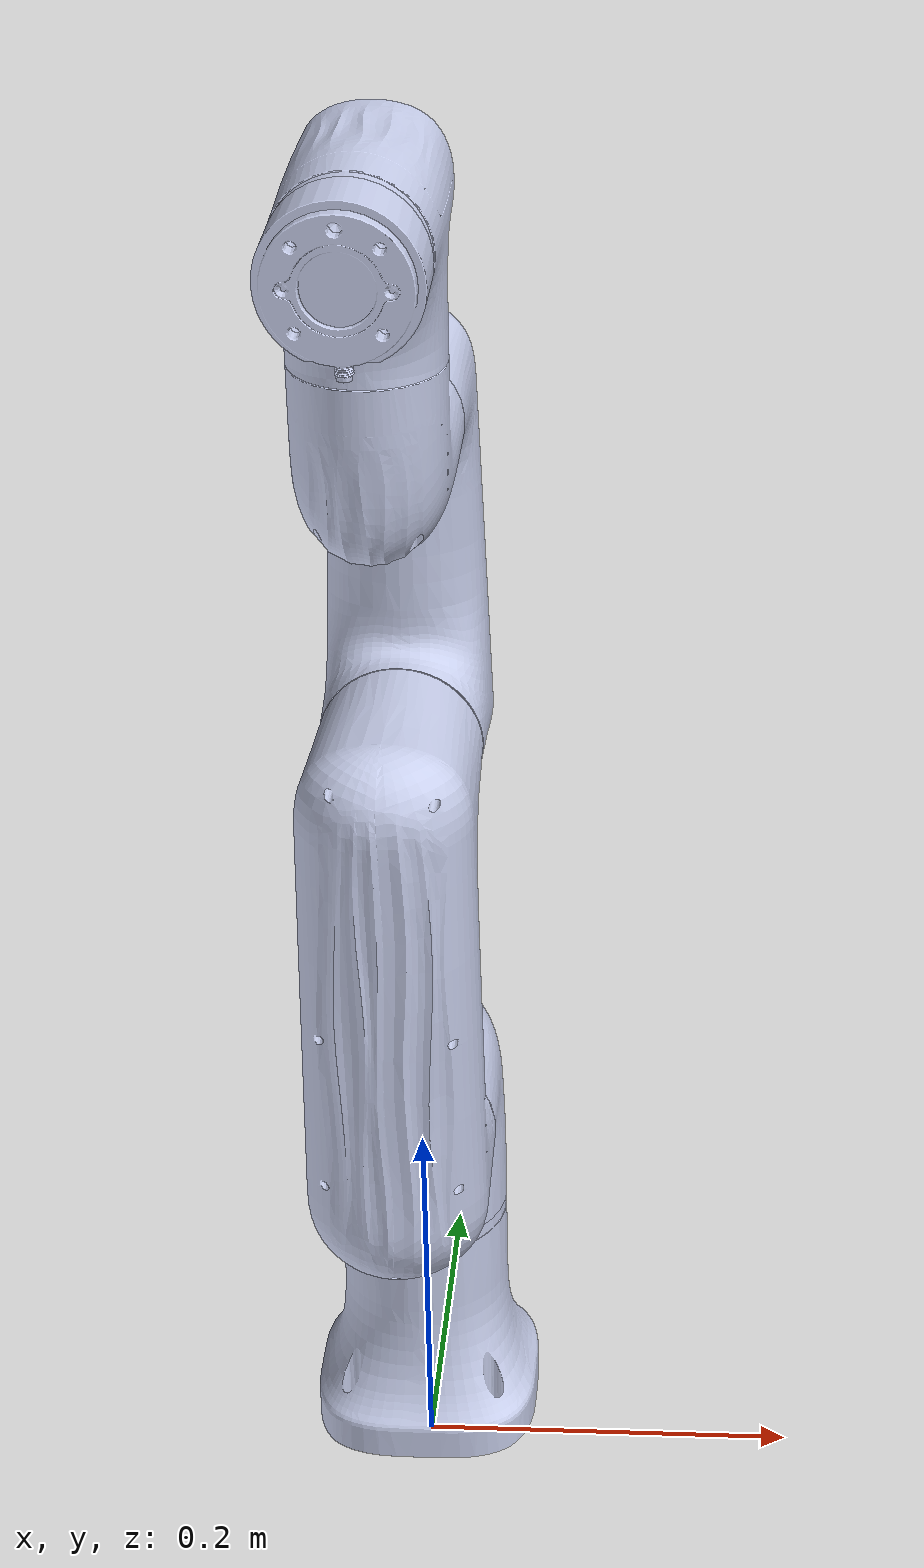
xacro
<?xml version="1.0"?>
<robot name="nova2s_robot" xmlns:xacro="http://ros.org/wiki/xacro">
  <link name="dummy_link" />
  <link
    name="base_link">
    <inertial>
      <origin
        xyz="1.0209E-06 0.00010913 0.063235"
        rpy="0 0 0" />
      <mass
        value="0.91548" />
      <inertia
        ixx="0.0018379"
        ixy="-7.0677E-07"
        ixz="1.1593E-07"
        iyy="0.0018392"
        iyz="-6.2348E-06"
        izz="0.0012494" />
    </inertial>
    <visual>
      <origin
        xyz="0 0 0"
        rpy="0 0 0" />
      <geometry>
        <mesh
          filename="file://$(find cra_description)/meshes/nova2s/base_link.STL" />
      </geometry>
      <material
        name="">
        <color
          rgba="0.79216 0.81961 0.93333 50" />
      </material>
    </visual>
    <collision>
      <origin
        xyz="0 0 0"
        rpy="0 0 0" />
      <geometry>
        <mesh
          filename="file://$(find cra_description)/meshes/nova2s/base_link.STL" />
      </geometry>
    </collision>
  </link>
    <link  name="world"/>
  <joint name="world_joint" type="fixed">
    <origin xyz="0 0 0.03" rpy="0 0 0" />
    <parent link="world" />
    <child  link="dummy_link" />
  </joint>
  <joint name="dummy_joint" type="fixed">
      <parent link="dummy_link" />
      <child  link="base_link" />
    </joint>
  <link
    name="Link1">
    <inertial>
      <origin
        xyz="-4.0953E-06 -0.0141 -0.022584"
        rpy="0 0 0" />
      <mass
        value="0.99824" />
      <inertia
        ixx="0.0022249"
        ixy="-1.0241E-07"
        ixz="-6.2827E-08"
        iyy="0.0017619"
        iyz="-0.000332"
        izz="0.0014195" />
    </inertial>
    <visual>
      <origin
        xyz="0 0 0"
        rpy="0 0 0" />
      <geometry>
        <mesh
          filename="file://$(find cra_description)/meshes/nova2s/Link1.STL" />
      </geometry>
      <material
        name="">
        <color
          rgba="0.79216 0.81961 0.93333 50" />
      </material>
    </visual>
    <collision>
      <origin
        xyz="0 0 0"
        rpy="0 0 0" />
      <geometry>
        <mesh
          filename="file://$(find cra_description)/meshes/nova2s/Link1.STL" />
      </geometry>
    </collision>
  </link>
  <joint
    name="joint1"
    type="revolute">
    <origin
      xyz="0 0 0.2234"
      rpy="0 0 0" />
    <parent
      link="base_link" />
    <child
      link="Link1" />
    <axis
      xyz="0 0 -1" />
    <limit
      lower="-6.283"
      upper="6.283"
      effort="0"
      velocity="0" />
  </joint>
  <link
    name="Link2">
    <inertial>
      <origin
        xyz="-0.11326 4.3343E-06 0.10595"
        rpy="0 0 0" />
      <mass
        value="1.7632" />
      <inertia
        ixx="0.002118"
        ixy="-1.1105E-09"
        ixz="0.001119"
        iyy="0.014156"
        iyz="2.2314E-07"
        izz="0.013753" />
    </inertial>
    <visual>
      <origin
        xyz="0 0 0"
        rpy="0 0 0" />
      <geometry>
        <mesh
          filename="file://$(find cra_description)/meshes/nova2s/Link2.STL" />
      </geometry>
      <material
        name="">
        <color
          rgba="0.79216 0.81961 0.93333 50" />
      </material>
    </visual>
    <collision>
      <origin
        xyz="0 0 0"
        rpy="0 0 0" />
      <geometry>
        <mesh
          filename="file://$(find cra_description)/meshes/nova2s/Link2.STL" />
      </geometry>
    </collision>
  </link>
  <joint
    name="joint2"
    type="revolute">
    <origin
      xyz="0 0 0"
      rpy="1.5708 1.5708 0" />
    <parent
      link="Link1" />
    <child
      link="Link2" />
    <axis
      xyz="0 0 -1" />
    <limit
      lower="-2.618"
      upper="2.618"
      effort="0"
      velocity="0" />
  </joint>
  <link
    name="Link3">
    <inertial>
      <origin
        xyz="-0.081962 -5.0488E-06 -0.0012298"
        rpy="0 0 0" />
      <mass
        value="1.097" />
      <inertia
        ixx="0.00089499"
        ixy="8.6274E-07"
        ixz="-0.00019344"
        iyy="0.0060939"
        iyz="1.2637E-07"
        izz="0.0060142" />
    </inertial>
    <visual>
      <origin
        xyz="0 0 0"
        rpy="0 0 0" />
      <geometry>
        <mesh
          filename="file://$(find cra_description)/meshes/nova2s/Link3.STL" />
      </geometry>
      <material
        name="">
        <color
          rgba="0.79216 0.81961 0.93333 50" />
      </material>
    </visual>
    <collision>
      <origin
        xyz="0 0 0"
        rpy="0 0 0" />
      <geometry>
        <mesh
          filename="file://$(find cra_description)/meshes/nova2s/Link3.STL" />
      </geometry>
    </collision>
  </link>
  <joint
    name="joint3"
    type="revolute">
    <origin
      xyz="-0.21 0 0"
      rpy="0 0 0" />
    <parent
      link="Link2" />
    <child
      link="Link3" />
    <axis
      xyz="0 0 -1" />
    <limit
      lower="-2.618"
      upper="2.618"
      effort="0"
      velocity="0" />
  </joint>
  <link
    name="Link4">
    <inertial>
      <origin
        xyz="-1.0901E-05 -0.011931 -0.016232"
        rpy="0 0 0" />
      <mass
        value="0.48466" />
      <inertia
        ixx="0.00065488"
        ixy="-8.7107E-08"
        ixz="-1.9656E-07"
        iyy="0.00050403"
        iyz="-9.9374E-05"
        izz="0.00044921" />
    </inertial>
    <visual>
      <origin
        xyz="0 0 0"
        rpy="0 0 0" />
      <geometry>
        <mesh
          filename="file://$(find cra_description)/meshes/nova2s/Link4.STL" />
      </geometry>
      <material
        name="">
        <color
          rgba="0.79216 0.81961 0.93333 50" />
      </material>
    </visual>
    <collision>
      <origin
        xyz="0 0 0"
        rpy="0 0 0" />
      <geometry>
        <mesh
          filename="file://$(find cra_description)/meshes/nova2s/Link4.STL" />
      </geometry>
    </collision>
  </link>
  <joint
    name="joint4"
    type="revolute">
    <origin
      xyz="-0.17 0 0.1175"
      rpy="0 0 -1.5708" />
    <parent
      link="Link3" />
    <child
      link="Link4" />
    <axis
      xyz="0 0 -1" />
    <limit
      lower="-2.653"
      upper="2.653"
      effort="0"
      velocity="0" />
  </joint>
  <link
    name="Link5">
    <inertial>
      <origin
        xyz="-2.2553E-06 -0.0036262 -0.0097886"
        rpy="0 0 0" />
      <mass
        value="0.5501" />
      <inertia
        ixx="0.00078033"
        ixy="3.5668E-08"
        ixz="-4.0432E-08"
        iyy="0.0004979"
        iyz="-1.7917E-05"
        izz="0.00064799" />
    </inertial>
    <visual>
      <origin
        xyz="0 0 0"
        rpy="0 0 0" />
      <geometry>
        <mesh
          filename="file://$(find cra_description)/meshes/nova2s/Link5.STL" />
      </geometry>
      <material
        name="">
        <color
          rgba="0.79216 0.81961 0.93333 50" />
      </material>
    </visual>
    <collision>
      <origin
        xyz="0 0 0"
        rpy="0 0 0" />
      <geometry>
        <mesh
          filename="file://$(find cra_description)/meshes/nova2s/Link5.STL" />
      </geometry>
    </collision>
  </link>
  <joint
    name="joint5"
    type="revolute">
    <origin
      xyz="0 -0.12 0"
      rpy="1.5708 0 0" />
    <parent
      link="Link4" />
    <child
      link="Link5" />
    <axis
      xyz="0 0 -1" />
    <limit
      lower="-6.283"
      upper="6.283"
      effort="0"
      velocity="0" />
  </joint>
  <link
    name="Link6">
    <inertial>
      <origin
        xyz="-2.021E-08 0.0003044 -0.021814"
        rpy="0 0 0" />
      <mass
        value="0.13664" />
      <inertia
        ixx="5.556E-05"
        ixy="-9.8081E-11"
        ixz="-6.3431E-12"
        iyy="5.616E-05"
        iyz="-3.6071E-08"
        izz="8.1817E-05" />
    </inertial>
    <visual>
      <origin
        xyz="0 0 0"
        rpy="0 0 0" />
      <geometry>
        <mesh
          filename="file://$(find cra_description)/meshes/nova2s/Link6.STL" />
      </geometry>
      <material
        name="">
        <color
          rgba="0.79216 0.81961 0.93333 50" />
      </material>
    </visual>
    <collision>
      <origin
        xyz="0 0 0"
        rpy="0 0 0" />
      <geometry>
        <mesh
          filename="file://$(find cra_description)/meshes/nova2s/Link6.STL" />
      </geometry>
    </collision>
  </link>
  <joint
    name="joint6"
    type="revolute">
    <origin
      xyz="0 0.09 0"
      rpy="-1.5708 0 0" />
    <parent
      link="Link5" />
    <child
      link="Link6" />
    <axis
      xyz="0 0 -1" />
    <limit
      lower="-6.283"
      upper="6.283"
      effort="0"
      velocity="0" />
  </joint>
  <gazebo reference="base_link">
        <gravity>false</gravity>
        <selfCollide>true</selfCollide>
    </gazebo>
    <gazebo reference="Link1">
        <gravity>false</gravity>
        <selfCollide>true</selfCollide>
    </gazebo>
    <gazebo reference="Link2">
        <gravity>false</gravity>
        <selfCollide>true</selfCollide>
    </gazebo>
    <gazebo reference="Link3">
        <gravity>false</gravity>
        <selfCollide>true</selfCollide>
    </gazebo>
    <gazebo reference="Link4">
        <gravity>false</gravity>
        <selfCollide>true</selfCollide>
    </gazebo>
    <gazebo reference="Link5">
        <gravity>false</gravity>
        <selfCollide>true</selfCollide>
    </gazebo>
    <gazebo reference="Link6">
        <gravity>false</gravity>
        <selfCollide>true</selfCollide>
    </gazebo>
    <!-- 在运行demo.launch.py时，需要注释这个ros2_control节点，因为它使用了xxx.ros2_control.xacro来生成了ros2_control节点-->
    <ros2_control name="GazeboSystem" type="system">
        <hardware>
            <plugin>gazebo_ros2_control/GazeboSystem</plugin>
        </hardware>
        <joint name="joint1">
            <command_interface name="position">
                <param name="min">-1</param>
                <param name="max">1</param>
            </command_interface>
            <state_interface name="position">
                <param name="initial_value">0.0</param>
            </state_interface>
            <state_interface name="velocity"/>
        </joint>
        <joint name="joint2">
            <command_interface name="position">
                <param name="min">-1</param>
                <param name="max">1</param>
            </command_interface>
            <state_interface name="position">
                <param name="initial_value">0.0</param>
            </state_interface>
            <state_interface name="velocity"/>
        </joint>
        <joint name="joint3">
            <command_interface name="position">
                <param name="min">-1</param>
                <param name="max">1</param>
            </command_interface>
            <state_interface name="position">
                <param name="initial_value">0.0</param>
            </state_interface>
            <state_interface name="velocity"/>
        </joint>
        <joint name="joint4">
            <command_interface name="position">
                <param name="min">-1</param>
                <param name="max">1</param>
            </command_interface>
            <state_interface name="position">
                <param name="initial_value">0.0</param>
            </state_interface>
            <state_interface name="velocity"/>
        </joint>
        <joint name="joint5">
            <command_interface name="position">
                <param name="min">-1</param>
                <param name="max">1</param>
            </command_interface>
            <state_interface name="position">
                <param name="initial_value">0.0</param>
            </state_interface>
            <state_interface name="velocity"/>
        </joint>
        <joint name="joint6">
            <command_interface name="position">
                <param name="min">-1</param>
                <param name="max">1</param>
            </command_interface>
            <state_interface name="position">
                <param name="initial_value">0.0</param>
            </state_interface>
            <state_interface name="velocity"/>
        </joint>
    </ros2_control>

    <gazebo>
        <plugin filename="libgazebo_ros2_control.so" name="gazebo_ros2_control">
            <parameters>$(find nova2s_moveit)/config/ros2_controllers.yaml</parameters>
            <robot_param_node>robot_state_publisher</robot_param_node>
        </plugin>
    </gazebo>
</robot>
